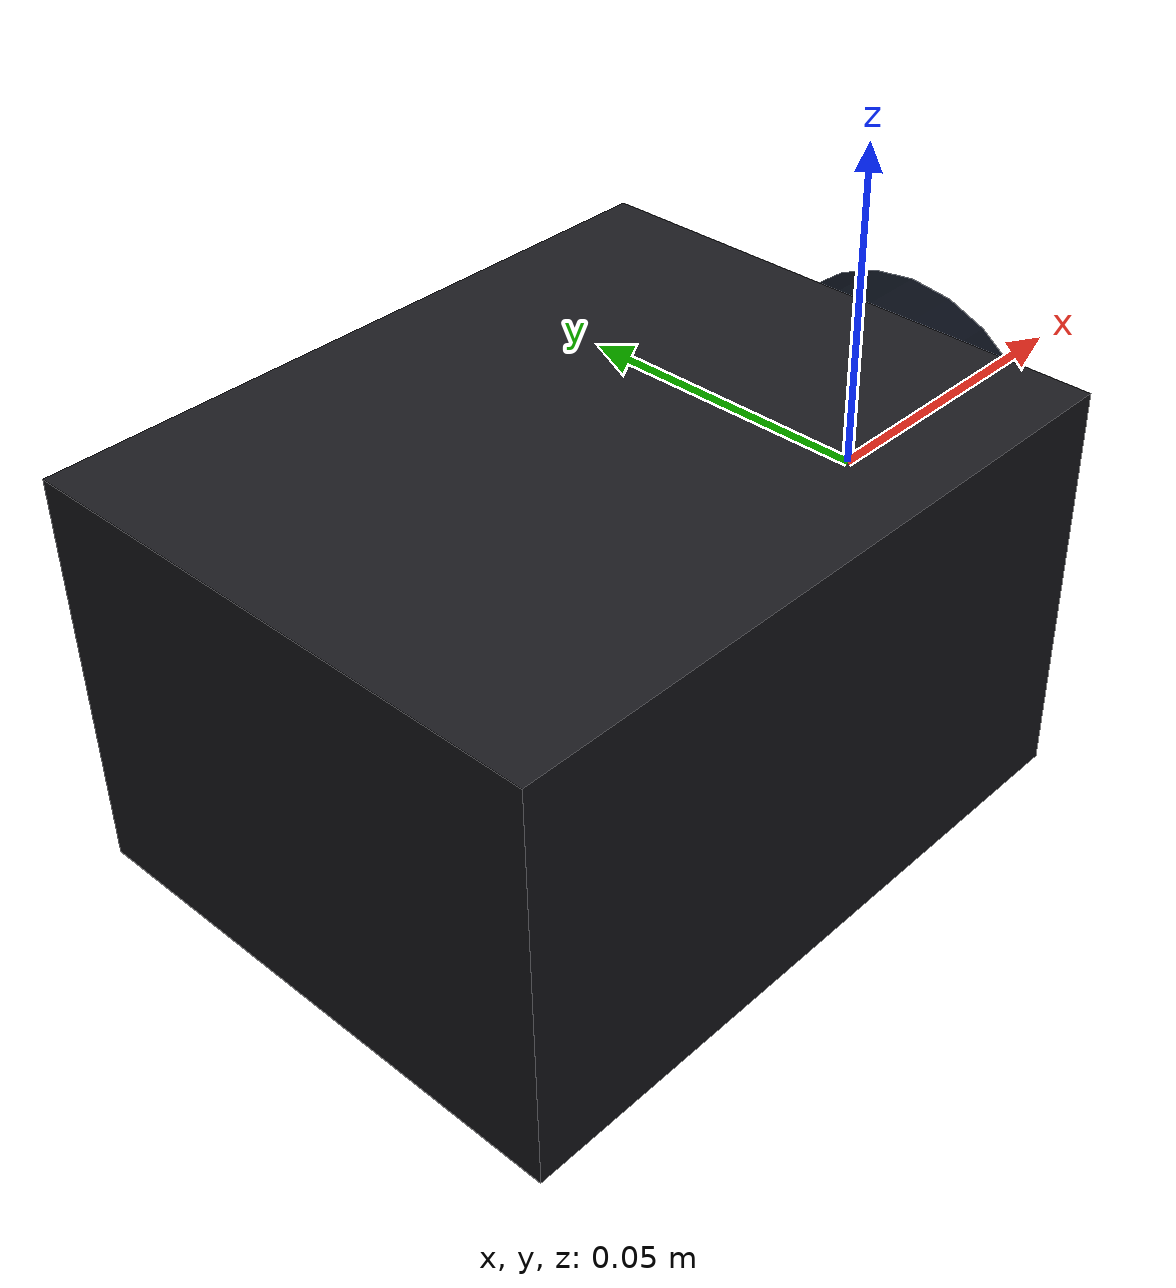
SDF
<?xml version='1.0' encoding='utf-8'?>
<sdf version="1.10">
  <model name="camera_frame">
    <static>true</static>
    <link name="camera_link">
      <visual name="camera_body_visual">
        <pose>-0.055 0 0 0 0 0</pose>
        <geometry>
          <box>
            <size>0.10 0.08 0.06</size>
          </box>
        </geometry>
        <material>
          <ambient>0.08 0.08 0.09 1</ambient>
          <diffuse>0.10 0.10 0.12 1</diffuse>
        </material>
      </visual>
      <visual name="camera_lens_visual">
        <pose>0 0 0 0 1.5708 0</pose>
        <geometry>
          <cylinder>
            <radius>0.025</radius>
            <length>0.025</length>
          </cylinder>
        </geometry>
        <material>
          <ambient>0.02 0.04 0.08 1</ambient>
          <diffuse>0.02 0.04 0.08 1</diffuse>
        </material>
      </visual>
      <sensor name="overhead_camera" type="camera">
        <always_on>true</always_on>
        <update_rate>15</update_rate>
        <visualize>true</visualize>
        <topic>/sorting_camera/image</topic>
        <camera>
          <horizontal_fov>0.286711161</horizontal_fov>
          <image>
            <width>640</width>
            <height>480</height>
            <format>R8G8B8</format>
          </image>
          <clip>
            <near>0.05</near>
            <far>5.0</far>
          </clip>
        </camera>
      </sensor>
    </link>
  </model>
</sdf>
